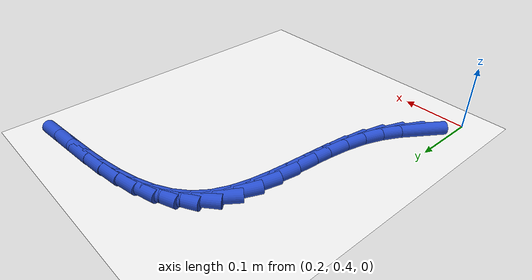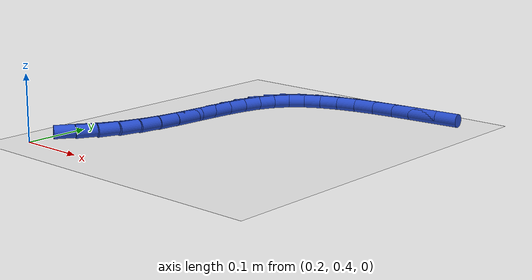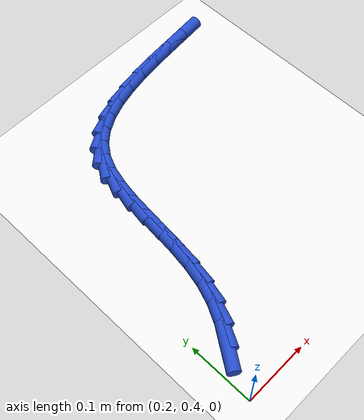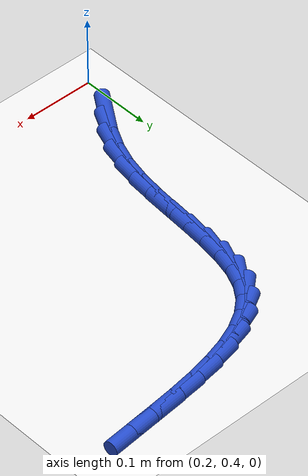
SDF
<sdf version="1.6">
 <world name="default">
  <model name="ground_plane">
   <static>1</static>
   <link name="link">
    <collision name="collision">
     <geometry><plane><normal>0 0 1</normal><size>100 100</size></plane></geometry>
     <surface><friction><ode><mu>100</mu><mu2>50</mu2></ode></friction></surface>
    </collision>
    <visual name="visual">
     <cast_shadows>0</cast_shadows>
     <geometry><plane><normal>0 0 1</normal><size>100 100</size></plane></geometry>
     <material>
      <script><uri>file://media/materials/scripts/gazebo.material</uri><name>Gazebo/WhiteGlow</name></script>
     </material>
    </visual>
   </link>
  </model>
  <model name="line">
   <link name="link_18">
    <pose>0.23235098267608725 0.4692451717662358 0.01 0 1.57 0.9766726559810752</pose>
    <collision name="collision">
     <geometry><cylinder><radius>0.01</radius><length>0.08</length></cylinder></geometry>
    </collision>
    <visual name="visual">
     <material>
      <script><name>Gazebo/Blue</name><uri>file://media/materials/scripts/gazebo.material</uri></script>
     </material>
     <geometry><cylinder><radius>0.01</radius><length>0.08</length></cylinder></geometry>
    </visual>
   </link>
   <link name="link_19">
    <pose>0.24944365722185338 0.49454724046932447 0.01 0 1.57 1.090152566953872</pose>
    <collision name="collision">
     <geometry><cylinder><radius>0.01</radius><length>0.08</length></cylinder></geometry>
    </collision>
    <visual name="visual">
     <material>
      <script><name>Gazebo/Blue</name><uri>file://media/materials/scripts/gazebo.material</uri></script>
     </material>
     <geometry><cylinder><radius>0.01</radius><length>0.08</length></cylinder></geometry>
    </visual>
   </link>
   <link name="link_20">
    <pose>0.26356071343956516 0.5216210059523008 0.01 0 1.57 1.222939860125851</pose>
    <collision name="collision">
     <geometry><cylinder><radius>0.01</radius><length>0.08</length></cylinder></geometry>
    </collision>
    <visual name="visual">
     <material>
      <script><name>Gazebo/Blue</name><uri>file://media/materials/scripts/gazebo.material</uri></script>
     </material>
     <geometry><cylinder><radius>0.01</radius><length>0.08</length></cylinder></geometry>
    </visual>
   </link>
   <link name="link_21">
    <pose>0.2741319722686062 0.5507749570641272 0.01 0 1.57 1.3444795407717574</pose>
    <collision name="collision">
     <geometry><cylinder><radius>0.01</radius><length>0.08</length></cylinder></geometry>
    </collision>
    <visual name="visual">
     <material>
      <script><name>Gazebo/Blue</name><uri>file://media/materials/scripts/gazebo.material</uri></script>
     </material>
     <geometry><cylinder><radius>0.01</radius><length>0.08</length></cylinder></geometry>
    </visual>
   </link>
   <link name="link_22">
    <pose>0.28128793871310515 0.5818525136254166 0.01 0 1.57 1.4269185933812407</pose>
    <collision name="collision">
     <geometry><cylinder><radius>0.01</radius><length>0.08</length></cylinder></geometry>
    </collision>
    <visual name="visual">
     <material>
      <script><name>Gazebo/Blue</name><uri>file://media/materials/scripts/gazebo.material</uri></script>
     </material>
     <geometry><cylinder><radius>0.01</radius><length>0.08</length></cylinder></geometry>
    </visual>
   </link>
   <link name="link_23">
    <pose>0.28596858367131384 0.6141598240447349 0.01 0 1.57 1.4738742626520873</pose>
    <collision name="collision">
     <geometry><cylinder><radius>0.01</radius><length>0.08</length></cylinder></geometry>
    </collision>
    <visual name="visual">
     <material>
      <script><name>Gazebo/Blue</name><uri>file://media/materials/scripts/gazebo.material</uri></script>
     </material>
     <geometry><cylinder><radius>0.01</radius><length>0.08</length></cylinder></geometry>
    </visual>
   </link>
   <link name="link_24">
    <pose>0.28915891454185294 0.6469731443975407 0.01 0 1.57 1.4886080291845232</pose>
    <collision name="collision">
     <geometry><cylinder><radius>0.01</radius><length>0.08</length></cylinder></geometry>
    </collision>
    <visual name="visual">
     <material>
      <script><name>Gazebo/Blue</name><uri>file://media/materials/scripts/gazebo.material</uri></script>
     </material>
     <geometry><cylinder><radius>0.01</radius><length>0.08</length></cylinder></geometry>
    </visual>
   </link>
   <link name="link_25">
    <pose>0.29184393872334274 0.6795687307592925 0.01 0 1.57 1.4711491300775834</pose>
    <collision name="collision">
     <geometry><cylinder><radius>0.01</radius><length>0.08</length></cylinder></geometry>
    </collision>
    <visual name="visual">
     <material>
      <script><name>Gazebo/Blue</name><uri>file://media/materials/scripts/gazebo.material</uri></script>
     </material>
     <geometry><cylinder><radius>0.01</radius><length>0.08</length></cylinder></geometry>
    </visual>
   </link>
   <link name="link_26">
    <pose>0.2950086636144039 0.7112228392054489 0.01 0 1.57 1.4176337225959348</pose>
    <collision name="collision">
     <geometry><cylinder><radius>0.01</radius><length>0.08</length></cylinder></geometry>
    </collision>
    <visual name="visual">
     <material>
      <script><name>Gazebo/Blue</name><uri>file://media/materials/scripts/gazebo.material</uri></script>
     </material>
     <geometry><cylinder><radius>0.01</radius><length>0.08</length></cylinder></geometry>
    </visual>
   </link>
   <link name="link_27">
    <pose>0.29963809661365665 0.741211725811468 0.01 0 1.57 1.3197172940842834</pose>
    <collision name="collision">
     <geometry><cylinder><radius>0.01</radius><length>0.08</length></cylinder></geometry>
    </collision>
    <visual name="visual">
     <material>
      <script><name>Gazebo/Blue</name><uri>file://media/materials/scripts/gazebo.material</uri></script>
     </material>
     <geometry><cylinder><radius>0.01</radius><length>0.08</length></cylinder></geometry>
    </visual>
   </link>
   <link name="link_28">
    <pose>0.30671724511972154 0.7688116466528091 0.01 0 1.57 1.1652370607983884</pose>
    <collision name="collision">
     <geometry><cylinder><radius>0.01</radius><length>0.08</length></cylinder></geometry>
    </collision>
    <visual name="visual">
     <material>
      <script><name>Gazebo/Blue</name><uri>file://media/materials/scripts/gazebo.material</uri></script>
     </material>
     <geometry><cylinder><radius>0.01</radius><length>0.08</length></cylinder></geometry>
    </visual>
   </link>
   <link name="link_29">
    <pose>0.31723111653121905 0.7932988578049303 0.01 0 1.57 0.9463632395428874</pose>
    <collision name="collision">
     <geometry><cylinder><radius>0.01</radius><length>0.08</length></cylinder></geometry>
    </collision>
    <visual name="visual">
     <material>
      <script><name>Gazebo/Blue</name><uri>file://media/materials/scripts/gazebo.material</uri></script>
     </material>
     <geometry><cylinder><radius>0.01</radius><length>0.08</length></cylinder></geometry>
    </visual>
   </link>
   <link name="link_30">
    <pose>0.33213112186709315 0.8139754250057988 0.01 0 1.57 0.7105518239178906</pose>
    <collision name="collision">
     <geometry><cylinder><radius>0.01</radius><length>0.08</length></cylinder></geometry>
    </collision>
    <visual name="visual">
     <material>
      <script><name>Gazebo/Blue</name><uri>file://media/materials/scripts/gazebo.material</uri></script>
     </material>
     <geometry><cylinder><radius>0.01</radius><length>0.08</length></cylinder></geometry>
    </visual>
   </link>
   <link name="link_31">
    <pose>0.35160353398793087 0.8307312141620331 0.01 0 1.57 0.5158622574108703</pose>
    <collision name="collision">
     <geometry><cylinder><radius>0.01</radius><length>0.08</length></cylinder></geometry>
    </collision>
    <visual name="visual">
     <material>
      <script><name>Gazebo/Blue</name><uri>file://media/materials/scripts/gazebo.material</uri></script>
     </material>
     <geometry><cylinder><radius>0.01</radius><length>0.08</length></cylinder></geometry>
    </visual>
   </link>
   <link name="link_32">
    <pose>0.375073674381191 0.8440406749453857 0.01 0 1.57 0.3682051923920951</pose>
    <collision name="collision">
     <geometry><cylinder><radius>0.01</radius><length>0.08</length></cylinder></geometry>
    </collision>
    <visual name="visual">
     <material>
      <script><name>Gazebo/Blue</name><uri>file://media/materials/scripts/gazebo.material</uri></script>
     </material>
     <geometry><cylinder><radius>0.01</radius><length>0.08</length></cylinder></geometry>
    </visual>
   </link>
   <link name="link_33">
    <pose>0.4019341055196044 0.8544034234033431 0.01 0 1.57 0.2609417602958283</pose>
    <collision name="collision">
     <geometry><cylinder><radius>0.01</radius><length>0.08</length></cylinder></geometry>
    </collision>
    <visual name="visual">
     <material>
      <script><name>Gazebo/Blue</name><uri>file://media/materials/scripts/gazebo.material</uri></script>
     </material>
     <geometry><cylinder><radius>0.01</radius><length>0.08</length></cylinder></geometry>
    </visual>
   </link>
   <link name="link_34">
    <pose>0.431577389875902 0.8623190755833914 0.01 0 1.57 0.1854137010561462</pose>
    <collision name="collision">
     <geometry><cylinder><radius>0.01</radius><length>0.08</length></cylinder></geometry>
    </collision>
    <visual name="visual">
     <material>
      <script><name>Gazebo/Blue</name><uri>file://media/materials/scripts/gazebo.material</uri></script>
     </material>
     <geometry><cylinder><radius>0.01</radius><length>0.08</length></cylinder></geometry>
    </visual>
   </link>
   <link name="link_35">
    <pose>0.46339608992281495 0.8682872475330174 0.01 0 1.57 0.13457423957374307</pose>
    <collision name="collision">
     <geometry><cylinder><radius>0.01</radius><length>0.08</length></cylinder></geometry>
    </collision>
    <visual name="visual">
     <material>
      <script><name>Gazebo/Blue</name><uri>file://media/materials/scripts/gazebo.material</uri></script>
     </material>
     <geometry><cylinder><radius>0.01</radius><length>0.08</length></cylinder></geometry>
    </visual>
   </link>
   <link name="link_36">
    <pose>0.4967827681330741 0.8728075552997079 0.01 0 1.57 0.10362598733923199</pose>
    <collision name="collision">
     <geometry><cylinder><radius>0.01</radius><length>0.08</length></cylinder></geometry>
    </collision>
    <visual name="visual">
     <material>
      <script><name>Gazebo/Blue</name><uri>file://media/materials/scripts/gazebo.material</uri></script>
     </material>
     <geometry><cylinder><radius>0.01</radius><length>0.08</length></cylinder></geometry>
    </visual>
   </link>
   <link name="link_37">
    <pose>0.5311299869794104 0.8763796149309488 0.01 0 1.57 0.08976956787255058</pose>
    <collision name="collision">
     <geometry><cylinder><radius>0.01</radius><length>0.08</length></cylinder></geometry>
    </collision>
    <visual name="visual">
     <material>
      <script><name>Gazebo/Blue</name><uri>file://media/materials/scripts/gazebo.material</uri></script>
     </material>
     <geometry><cylinder><radius>0.01</radius><length>0.08</length></cylinder></geometry>
    </visual>
   </link>
   <link name="link_38">
    <pose>0.5658303089345553 0.8795030424742272 0.01 0 1.57 0.09189663974951695</pose>
    <collision name="collision">
     <geometry><cylinder><radius>0.01</radius><length>0.08</length></cylinder></geometry>
    </collision>
    <visual name="visual">
     <material>
      <script><name>Gazebo/Blue</name><uri>file://media/materials/scripts/gazebo.material</uri></script>
     </material>
     <geometry><cylinder><radius>0.01</radius><length>0.08</length></cylinder></geometry>
    </visual>
   </link>
  </model>
 </world>
</sdf>
